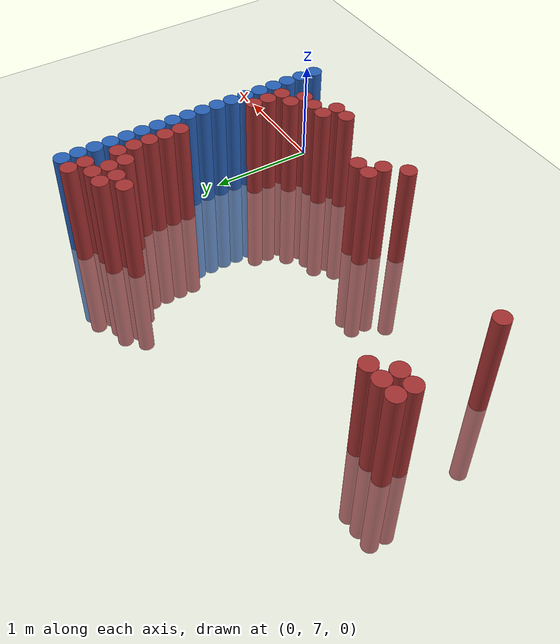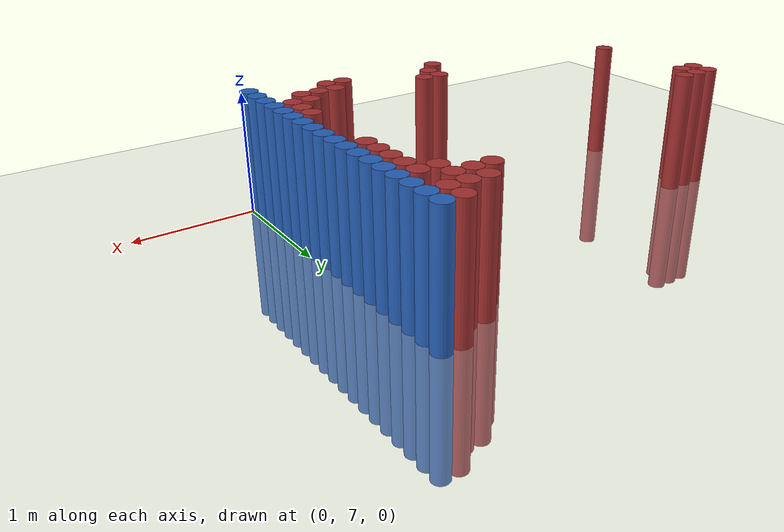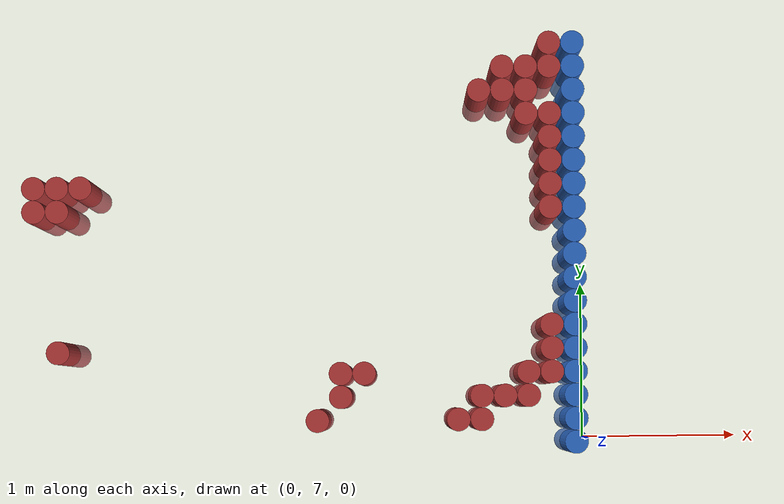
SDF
<sdf version="1.6">
 <world name="default">
  <model name="ground_plane">
   <static>1</static>
   <link name="link">
    <collision name="collision">
     <geometry><plane><normal>0 0 1</normal><size>100 100</size></plane></geometry>
     <surface><friction><ode><mu>100</mu><mu2>50</mu2></ode></friction></surface>
    </collision>
    <visual name="visual">
     <cast_shadows>0</cast_shadows>
     <geometry><plane><normal>0 0 1</normal><size>100 100</size></plane></geometry>
     <material>
      <script><uri>file://media/materials/scripts/gazebo.material</uri><name>Gazebo/Grey</name></script>
     </material>
    </visual>
   </link>
  </model>
  <model name="unit_cylinder_147">
   <static>1</static>
   <pose>-3.525000 8.475000 0.000000 0.000000 0.000000 0.000000</pose>
   <link name="link">
    <inertial>
     <mass>1</mass>
     <inertia><ixx>0.145833</ixx><ixy>0</ixy><ixz>0</ixz><iyy>0.145833</iyy><iyz>0</iyz><izz>0.125</izz></inertia>
    </inertial>
    <collision name="collision">
     <geometry><cylinder><radius>0.075000</radius><length>2</length></cylinder></geometry>
    </collision>
    <visual name="visual">
     <geometry><cylinder><radius>0.075000</radius><length>2</length></cylinder></geometry>
     <material>
      <ambient>0.648000 0.192000 0.192000 1</ambient>
      <diffuse>0.648000 0.192000 0.192000 1</diffuse>
     </material>
     <material>
      <script><name>Gazebo/Grey</name><uri>file://media/materials/scripts/gazebo.material</uri></script>
     </material>
    </visual>
   </link>
  </model>
  <model name="unit_cylinder_148">
   <static>1</static>
   <pose>-3.525000 8.625000 0.000000 0.000000 0.000000 0.000000</pose>
   <link name="link">
    <inertial>
     <mass>1</mass>
     <inertia><ixx>0.145833</ixx><ixy>0</ixy><ixz>0</ixz><iyy>0.145833</iyy><iyz>0</iyz><izz>0.125</izz></inertia>
    </inertial>
    <collision name="collision">
     <geometry><cylinder><radius>0.075000</radius><length>2</length></cylinder></geometry>
    </collision>
    <visual name="visual">
     <geometry><cylinder><radius>0.075000</radius><length>2</length></cylinder></geometry>
     <material>
      <ambient>0.648000 0.192000 0.192000 1</ambient>
      <diffuse>0.648000 0.192000 0.192000 1</diffuse>
     </material>
     <material>
      <script><name>Gazebo/Grey</name><uri>file://media/materials/scripts/gazebo.material</uri></script>
     </material>
    </visual>
   </link>
  </model>
  <model name="unit_cylinder_156">
   <static>1</static>
   <pose>-3.375000 7.575000 0.000000 0.000000 0.000000 0.000000</pose>
   <link name="link">
    <inertial>
     <mass>1</mass>
     <inertia><ixx>0.145833</ixx><ixy>0</ixy><ixz>0</ixz><iyy>0.145833</iyy><iyz>0</iyz><izz>0.125</izz></inertia>
    </inertial>
    <collision name="collision">
     <geometry><cylinder><radius>0.075000</radius><length>2</length></cylinder></geometry>
    </collision>
    <visual name="visual">
     <geometry><cylinder><radius>0.075000</radius><length>2</length></cylinder></geometry>
     <material>
      <ambient>0.648000 0.192000 0.192000 1</ambient>
      <diffuse>0.648000 0.192000 0.192000 1</diffuse>
     </material>
     <material>
      <script><name>Gazebo/Grey</name><uri>file://media/materials/scripts/gazebo.material</uri></script>
     </material>
    </visual>
   </link>
  </model>
  <model name="unit_cylinder_157">
   <static>1</static>
   <pose>-3.375000 8.475000 0.000000 0.000000 0.000000 0.000000</pose>
   <link name="link">
    <inertial>
     <mass>1</mass>
     <inertia><ixx>0.145833</ixx><ixy>0</ixy><ixz>0</ixz><iyy>0.145833</iyy><iyz>0</iyz><izz>0.125</izz></inertia>
    </inertial>
    <collision name="collision">
     <geometry><cylinder><radius>0.075000</radius><length>2</length></cylinder></geometry>
    </collision>
    <visual name="visual">
     <geometry><cylinder><radius>0.075000</radius><length>2</length></cylinder></geometry>
     <material>
      <ambient>0.648000 0.192000 0.192000 1</ambient>
      <diffuse>0.648000 0.192000 0.192000 1</diffuse>
     </material>
     <material>
      <script><name>Gazebo/Grey</name><uri>file://media/materials/scripts/gazebo.material</uri></script>
     </material>
    </visual>
   </link>
  </model>
  <model name="unit_cylinder_158">
   <static>1</static>
   <pose>-3.375000 8.625000 0.000000 0.000000 0.000000 0.000000</pose>
   <link name="link">
    <inertial>
     <mass>1</mass>
     <inertia><ixx>0.145833</ixx><ixy>0</ixy><ixz>0</ixz><iyy>0.145833</iyy><iyz>0</iyz><izz>0.125</izz></inertia>
    </inertial>
    <collision name="collision">
     <geometry><cylinder><radius>0.075000</radius><length>2</length></cylinder></geometry>
    </collision>
    <visual name="visual">
     <geometry><cylinder><radius>0.075000</radius><length>2</length></cylinder></geometry>
     <material>
      <ambient>0.648000 0.192000 0.192000 1</ambient>
      <diffuse>0.648000 0.192000 0.192000 1</diffuse>
     </material>
     <material>
      <script><name>Gazebo/Grey</name><uri>file://media/materials/scripts/gazebo.material</uri></script>
     </material>
    </visual>
   </link>
  </model>
  <model name="unit_cylinder_165">
   <static>1</static>
   <pose>-3.225000 8.625000 0.000000 0.000000 0.000000 0.000000</pose>
   <link name="link">
    <inertial>
     <mass>1</mass>
     <inertia><ixx>0.145833</ixx><ixy>0</ixy><ixz>0</ixz><iyy>0.145833</iyy><iyz>0</iyz><izz>0.125</izz></inertia>
    </inertial>
    <collision name="collision">
     <geometry><cylinder><radius>0.075000</radius><length>2</length></cylinder></geometry>
    </collision>
    <visual name="visual">
     <geometry><cylinder><radius>0.075000</radius><length>2</length></cylinder></geometry>
     <material>
      <ambient>0.648000 0.192000 0.192000 1</ambient>
      <diffuse>0.648000 0.192000 0.192000 1</diffuse>
     </material>
     <material>
      <script><name>Gazebo/Grey</name><uri>file://media/materials/scripts/gazebo.material</uri></script>
     </material>
    </visual>
   </link>
  </model>
  <model name="unit_cylinder_176">
   <static>1</static>
   <pose>-1.725000 7.125000 0.000000 0.000000 0.000000 0.000000</pose>
   <link name="link">
    <inertial>
     <mass>1</mass>
     <inertia><ixx>0.145833</ixx><ixy>0</ixy><ixz>0</ixz><iyy>0.145833</iyy><iyz>0</iyz><izz>0.125</izz></inertia>
    </inertial>
    <collision name="collision">
     <geometry><cylinder><radius>0.075000</radius><length>2</length></cylinder></geometry>
    </collision>
    <visual name="visual">
     <geometry><cylinder><radius>0.075000</radius><length>2</length></cylinder></geometry>
     <material>
      <ambient>0.648000 0.192000 0.192000 1</ambient>
      <diffuse>0.648000 0.192000 0.192000 1</diffuse>
     </material>
     <material>
      <script><name>Gazebo/Grey</name><uri>file://media/materials/scripts/gazebo.material</uri></script>
     </material>
    </visual>
   </link>
  </model>
  <model name="unit_cylinder_177">
   <static>1</static>
   <pose>-1.575000 7.275000 0.000000 0.000000 0.000000 0.000000</pose>
   <link name="link">
    <inertial>
     <mass>1</mass>
     <inertia><ixx>0.145833</ixx><ixy>0</ixy><ixz>0</ixz><iyy>0.145833</iyy><iyz>0</iyz><izz>0.125</izz></inertia>
    </inertial>
    <collision name="collision">
     <geometry><cylinder><radius>0.075000</radius><length>2</length></cylinder></geometry>
    </collision>
    <visual name="visual">
     <geometry><cylinder><radius>0.075000</radius><length>2</length></cylinder></geometry>
     <material>
      <ambient>0.648000 0.192000 0.192000 1</ambient>
      <diffuse>0.648000 0.192000 0.192000 1</diffuse>
     </material>
     <material>
      <script><name>Gazebo/Grey</name><uri>file://media/materials/scripts/gazebo.material</uri></script>
     </material>
    </visual>
   </link>
  </model>
  <model name="unit_cylinder_178">
   <static>1</static>
   <pose>-1.575000 7.425000 0.000000 0.000000 0.000000 0.000000</pose>
   <link name="link">
    <inertial>
     <mass>1</mass>
     <inertia><ixx>0.145833</ixx><ixy>0</ixy><ixz>0</ixz><iyy>0.145833</iyy><iyz>0</iyz><izz>0.125</izz></inertia>
    </inertial>
    <collision name="collision">
     <geometry><cylinder><radius>0.075000</radius><length>2</length></cylinder></geometry>
    </collision>
    <visual name="visual">
     <geometry><cylinder><radius>0.075000</radius><length>2</length></cylinder></geometry>
     <material>
      <ambient>0.648000 0.192000 0.192000 1</ambient>
      <diffuse>0.648000 0.192000 0.192000 1</diffuse>
     </material>
     <material>
      <script><name>Gazebo/Grey</name><uri>file://media/materials/scripts/gazebo.material</uri></script>
     </material>
    </visual>
   </link>
  </model>
  <model name="unit_cylinder_179">
   <static>1</static>
   <pose>-1.425000 7.425000 0.000000 0.000000 0.000000 0.000000</pose>
   <link name="link">
    <inertial>
     <mass>1</mass>
     <inertia><ixx>0.145833</ixx><ixy>0</ixy><ixz>0</ixz><iyy>0.145833</iyy><iyz>0</iyz><izz>0.125</izz></inertia>
    </inertial>
    <collision name="collision">
     <geometry><cylinder><radius>0.075000</radius><length>2</length></cylinder></geometry>
    </collision>
    <visual name="visual">
     <geometry><cylinder><radius>0.075000</radius><length>2</length></cylinder></geometry>
     <material>
      <ambient>0.648000 0.192000 0.192000 1</ambient>
      <diffuse>0.648000 0.192000 0.192000 1</diffuse>
     </material>
     <material>
      <script><name>Gazebo/Grey</name><uri>file://media/materials/scripts/gazebo.material</uri></script>
     </material>
    </visual>
   </link>
  </model>
  <model name="unit_cylinder_184">
   <static>1</static>
   <pose>-0.825000 7.125000 0.000000 0.000000 0.000000 0.000000</pose>
   <link name="link">
    <inertial>
     <mass>1</mass>
     <inertia><ixx>0.145833</ixx><ixy>0</ixy><ixz>0</ixz><iyy>0.145833</iyy><iyz>0</iyz><izz>0.125</izz></inertia>
    </inertial>
    <collision name="collision">
     <geometry><cylinder><radius>0.075000</radius><length>2</length></cylinder></geometry>
    </collision>
    <visual name="visual">
     <geometry><cylinder><radius>0.075000</radius><length>2</length></cylinder></geometry>
     <material>
      <ambient>0.648000 0.192000 0.192000 1</ambient>
      <diffuse>0.648000 0.192000 0.192000 1</diffuse>
     </material>
     <material>
      <script><name>Gazebo/Grey</name><uri>file://media/materials/scripts/gazebo.material</uri></script>
     </material>
    </visual>
   </link>
  </model>
  <model name="unit_cylinder_186">
   <static>1</static>
   <pose>-0.675000 7.125000 0.000000 0.000000 0.000000 0.000000</pose>
   <link name="link">
    <inertial>
     <mass>1</mass>
     <inertia><ixx>0.145833</ixx><ixy>0</ixy><ixz>0</ixz><iyy>0.145833</iyy><iyz>0</iyz><izz>0.125</izz></inertia>
    </inertial>
    <collision name="collision">
     <geometry><cylinder><radius>0.075000</radius><length>2</length></cylinder></geometry>
    </collision>
    <visual name="visual">
     <geometry><cylinder><radius>0.075000</radius><length>2</length></cylinder></geometry>
     <material>
      <ambient>0.648000 0.192000 0.192000 1</ambient>
      <diffuse>0.648000 0.192000 0.192000 1</diffuse>
     </material>
     <material>
      <script><name>Gazebo/Grey</name><uri>file://media/materials/scripts/gazebo.material</uri></script>
     </material>
    </visual>
   </link>
  </model>
  <model name="unit_cylinder_187">
   <static>1</static>
   <pose>-0.675000 7.275000 0.000000 0.000000 0.000000 0.000000</pose>
   <link name="link">
    <inertial>
     <mass>1</mass>
     <inertia><ixx>0.145833</ixx><ixy>0</ixy><ixz>0</ixz><iyy>0.145833</iyy><iyz>0</iyz><izz>0.125</izz></inertia>
    </inertial>
    <collision name="collision">
     <geometry><cylinder><radius>0.075000</radius><length>2</length></cylinder></geometry>
    </collision>
    <visual name="visual">
     <geometry><cylinder><radius>0.075000</radius><length>2</length></cylinder></geometry>
     <material>
      <ambient>0.648000 0.192000 0.192000 1</ambient>
      <diffuse>0.648000 0.192000 0.192000 1</diffuse>
     </material>
     <material>
      <script><name>Gazebo/Grey</name><uri>file://media/materials/scripts/gazebo.material</uri></script>
     </material>
    </visual>
   </link>
  </model>
  <model name="unit_cylinder_188">
   <static>1</static>
   <pose>-0.675000 9.225000 0.000000 0.000000 0.000000 0.000000</pose>
   <link name="link">
    <inertial>
     <mass>1</mass>
     <inertia><ixx>0.145833</ixx><ixy>0</ixy><ixz>0</ixz><iyy>0.145833</iyy><iyz>0</iyz><izz>0.125</izz></inertia>
    </inertial>
    <collision name="collision">
     <geometry><cylinder><radius>0.075000</radius><length>2</length></cylinder></geometry>
    </collision>
    <visual name="visual">
     <geometry><cylinder><radius>0.075000</radius><length>2</length></cylinder></geometry>
     <material>
      <ambient>0.648000 0.192000 0.192000 1</ambient>
      <diffuse>0.648000 0.192000 0.192000 1</diffuse>
     </material>
     <material>
      <script><name>Gazebo/Grey</name><uri>file://media/materials/scripts/gazebo.material</uri></script>
     </material>
    </visual>
   </link>
  </model>
  <model name="unit_cylinder_192">
   <static>1</static>
   <pose>-0.525000 7.275000 0.000000 0.000000 0.000000 0.000000</pose>
   <link name="link">
    <inertial>
     <mass>1</mass>
     <inertia><ixx>0.145833</ixx><ixy>0</ixy><ixz>0</ixz><iyy>0.145833</iyy><iyz>0</iyz><izz>0.125</izz></inertia>
    </inertial>
    <collision name="collision">
     <geometry><cylinder><radius>0.075000</radius><length>2</length></cylinder></geometry>
    </collision>
    <visual name="visual">
     <geometry><cylinder><radius>0.075000</radius><length>2</length></cylinder></geometry>
     <material>
      <ambient>0.648000 0.192000 0.192000 1</ambient>
      <diffuse>0.648000 0.192000 0.192000 1</diffuse>
     </material>
     <material>
      <script><name>Gazebo/Grey</name><uri>file://media/materials/scripts/gazebo.material</uri></script>
     </material>
    </visual>
   </link>
  </model>
  <model name="unit_cylinder_193">
   <static>1</static>
   <pose>-0.525000 9.225000 0.000000 0.000000 0.000000 0.000000</pose>
   <link name="link">
    <inertial>
     <mass>1</mass>
     <inertia><ixx>0.145833</ixx><ixy>0</ixy><ixz>0</ixz><iyy>0.145833</iyy><iyz>0</iyz><izz>0.125</izz></inertia>
    </inertial>
    <collision name="collision">
     <geometry><cylinder><radius>0.075000</radius><length>2</length></cylinder></geometry>
    </collision>
    <visual name="visual">
     <geometry><cylinder><radius>0.075000</radius><length>2</length></cylinder></geometry>
     <material>
      <ambient>0.648000 0.192000 0.192000 1</ambient>
      <diffuse>0.648000 0.192000 0.192000 1</diffuse>
     </material>
     <material>
      <script><name>Gazebo/Grey</name><uri>file://media/materials/scripts/gazebo.material</uri></script>
     </material>
    </visual>
   </link>
  </model>
  <model name="unit_cylinder_194">
   <static>1</static>
   <pose>-0.525000 9.375000 0.000000 0.000000 0.000000 0.000000</pose>
   <link name="link">
    <inertial>
     <mass>1</mass>
     <inertia><ixx>0.145833</ixx><ixy>0</ixy><ixz>0</ixz><iyy>0.145833</iyy><iyz>0</iyz><izz>0.125</izz></inertia>
    </inertial>
    <collision name="collision">
     <geometry><cylinder><radius>0.075000</radius><length>2</length></cylinder></geometry>
    </collision>
    <visual name="visual">
     <geometry><cylinder><radius>0.075000</radius><length>2</length></cylinder></geometry>
     <material>
      <ambient>0.648000 0.192000 0.192000 1</ambient>
      <diffuse>0.648000 0.192000 0.192000 1</diffuse>
     </material>
     <material>
      <script><name>Gazebo/Grey</name><uri>file://media/materials/scripts/gazebo.material</uri></script>
     </material>
    </visual>
   </link>
  </model>
  <model name="unit_cylinder_197">
   <static>1</static>
   <pose>-0.375000 7.275000 0.000000 0.000000 0.000000 0.000000</pose>
   <link name="link">
    <inertial>
     <mass>1</mass>
     <inertia><ixx>0.145833</ixx><ixy>0</ixy><ixz>0</ixz><iyy>0.145833</iyy><iyz>0</iyz><izz>0.125</izz></inertia>
    </inertial>
    <collision name="collision">
     <geometry><cylinder><radius>0.075000</radius><length>2</length></cylinder></geometry>
    </collision>
    <visual name="visual">
     <geometry><cylinder><radius>0.075000</radius><length>2</length></cylinder></geometry>
     <material>
      <ambient>0.648000 0.192000 0.192000 1</ambient>
      <diffuse>0.648000 0.192000 0.192000 1</diffuse>
     </material>
     <material>
      <script><name>Gazebo/Grey</name><uri>file://media/materials/scripts/gazebo.material</uri></script>
     </material>
    </visual>
   </link>
  </model>
  <model name="unit_cylinder_198">
   <static>1</static>
   <pose>-0.375000 7.425000 0.000000 0.000000 0.000000 0.000000</pose>
   <link name="link">
    <inertial>
     <mass>1</mass>
     <inertia><ixx>0.145833</ixx><ixy>0</ixy><ixz>0</ixz><iyy>0.145833</iyy><iyz>0</iyz><izz>0.125</izz></inertia>
    </inertial>
    <collision name="collision">
     <geometry><cylinder><radius>0.075000</radius><length>2</length></cylinder></geometry>
    </collision>
    <visual name="visual">
     <geometry><cylinder><radius>0.075000</radius><length>2</length></cylinder></geometry>
     <material>
      <ambient>0.648000 0.192000 0.192000 1</ambient>
      <diffuse>0.648000 0.192000 0.192000 1</diffuse>
     </material>
     <material>
      <script><name>Gazebo/Grey</name><uri>file://media/materials/scripts/gazebo.material</uri></script>
     </material>
    </visual>
   </link>
  </model>
  <model name="unit_cylinder_199">
   <static>1</static>
   <pose>-0.375000 9.075000 0.000000 0.000000 0.000000 0.000000</pose>
   <link name="link">
    <inertial>
     <mass>1</mass>
     <inertia><ixx>0.145833</ixx><ixy>0</ixy><ixz>0</ixz><iyy>0.145833</iyy><iyz>0</iyz><izz>0.125</izz></inertia>
    </inertial>
    <collision name="collision">
     <geometry><cylinder><radius>0.075000</radius><length>2</length></cylinder></geometry>
    </collision>
    <visual name="visual">
     <geometry><cylinder><radius>0.075000</radius><length>2</length></cylinder></geometry>
     <material>
      <ambient>0.648000 0.192000 0.192000 1</ambient>
      <diffuse>0.648000 0.192000 0.192000 1</diffuse>
     </material>
     <material>
      <script><name>Gazebo/Grey</name><uri>file://media/materials/scripts/gazebo.material</uri></script>
     </material>
    </visual>
   </link>
  </model>
  <model name="unit_cylinder_200">
   <static>1</static>
   <pose>-0.375000 9.225000 0.000000 0.000000 0.000000 0.000000</pose>
   <link name="link">
    <inertial>
     <mass>1</mass>
     <inertia><ixx>0.145833</ixx><ixy>0</ixy><ixz>0</ixz><iyy>0.145833</iyy><iyz>0</iyz><izz>0.125</izz></inertia>
    </inertial>
    <collision name="collision">
     <geometry><cylinder><radius>0.075000</radius><length>2</length></cylinder></geometry>
    </collision>
    <visual name="visual">
     <geometry><cylinder><radius>0.075000</radius><length>2</length></cylinder></geometry>
     <material>
      <ambient>0.648000 0.192000 0.192000 1</ambient>
      <diffuse>0.648000 0.192000 0.192000 1</diffuse>
     </material>
     <material>
      <script><name>Gazebo/Grey</name><uri>file://media/materials/scripts/gazebo.material</uri></script>
     </material>
    </visual>
   </link>
  </model>
  <model name="unit_cylinder_201">
   <static>1</static>
   <pose>-0.375000 9.375000 0.000000 0.000000 0.000000 0.000000</pose>
   <link name="link">
    <inertial>
     <mass>1</mass>
     <inertia><ixx>0.145833</ixx><ixy>0</ixy><ixz>0</ixz><iyy>0.145833</iyy><iyz>0</iyz><izz>0.125</izz></inertia>
    </inertial>
    <collision name="collision">
     <geometry><cylinder><radius>0.075000</radius><length>2</length></cylinder></geometry>
    </collision>
    <visual name="visual">
     <geometry><cylinder><radius>0.075000</radius><length>2</length></cylinder></geometry>
     <material>
      <ambient>0.648000 0.192000 0.192000 1</ambient>
      <diffuse>0.648000 0.192000 0.192000 1</diffuse>
     </material>
     <material>
      <script><name>Gazebo/Grey</name><uri>file://media/materials/scripts/gazebo.material</uri></script>
     </material>
    </visual>
   </link>
  </model>
  <model name="unit_cylinder_210">
   <static>1</static>
   <pose>-0.225000 7.425000 0.000000 0.000000 0.000000 0.000000</pose>
   <link name="link">
    <inertial>
     <mass>1</mass>
     <inertia><ixx>0.145833</ixx><ixy>0</ixy><ixz>0</ixz><iyy>0.145833</iyy><iyz>0</iyz><izz>0.125</izz></inertia>
    </inertial>
    <collision name="collision">
     <geometry><cylinder><radius>0.075000</radius><length>2</length></cylinder></geometry>
    </collision>
    <visual name="visual">
     <geometry><cylinder><radius>0.075000</radius><length>2</length></cylinder></geometry>
     <material>
      <ambient>0.648000 0.192000 0.192000 1</ambient>
      <diffuse>0.648000 0.192000 0.192000 1</diffuse>
     </material>
     <material>
      <script><name>Gazebo/Grey</name><uri>file://media/materials/scripts/gazebo.material</uri></script>
     </material>
    </visual>
   </link>
  </model>
  <model name="unit_cylinder_211">
   <static>1</static>
   <pose>-0.225000 7.575000 0.000000 0.000000 0.000000 0.000000</pose>
   <link name="link">
    <inertial>
     <mass>1</mass>
     <inertia><ixx>0.145833</ixx><ixy>0</ixy><ixz>0</ixz><iyy>0.145833</iyy><iyz>0</iyz><izz>0.125</izz></inertia>
    </inertial>
    <collision name="collision">
     <geometry><cylinder><radius>0.075000</radius><length>2</length></cylinder></geometry>
    </collision>
    <visual name="visual">
     <geometry><cylinder><radius>0.075000</radius><length>2</length></cylinder></geometry>
     <material>
      <ambient>0.648000 0.192000 0.192000 1</ambient>
      <diffuse>0.648000 0.192000 0.192000 1</diffuse>
     </material>
     <material>
      <script><name>Gazebo/Grey</name><uri>file://media/materials/scripts/gazebo.material</uri></script>
     </material>
    </visual>
   </link>
  </model>
  <model name="unit_cylinder_212">
   <static>1</static>
   <pose>-0.225000 7.725000 0.000000 0.000000 0.000000 0.000000</pose>
   <link name="link">
    <inertial>
     <mass>1</mass>
     <inertia><ixx>0.145833</ixx><ixy>0</ixy><ixz>0</ixz><iyy>0.145833</iyy><iyz>0</iyz><izz>0.125</izz></inertia>
    </inertial>
    <collision name="collision">
     <geometry><cylinder><radius>0.075000</radius><length>2</length></cylinder></geometry>
    </collision>
    <visual name="visual">
     <geometry><cylinder><radius>0.075000</radius><length>2</length></cylinder></geometry>
     <material>
      <ambient>0.648000 0.192000 0.192000 1</ambient>
      <diffuse>0.648000 0.192000 0.192000 1</diffuse>
     </material>
     <material>
      <script><name>Gazebo/Grey</name><uri>file://media/materials/scripts/gazebo.material</uri></script>
     </material>
    </visual>
   </link>
  </model>
  <model name="unit_cylinder_213">
   <static>1</static>
   <pose>-0.225000 8.475000 0.000000 0.000000 0.000000 0.000000</pose>
   <link name="link">
    <inertial>
     <mass>1</mass>
     <inertia><ixx>0.145833</ixx><ixy>0</ixy><ixz>0</ixz><iyy>0.145833</iyy><iyz>0</iyz><izz>0.125</izz></inertia>
    </inertial>
    <collision name="collision">
     <geometry><cylinder><radius>0.075000</radius><length>2</length></cylinder></geometry>
    </collision>
    <visual name="visual">
     <geometry><cylinder><radius>0.075000</radius><length>2</length></cylinder></geometry>
     <material>
      <ambient>0.648000 0.192000 0.192000 1</ambient>
      <diffuse>0.648000 0.192000 0.192000 1</diffuse>
     </material>
     <material>
      <script><name>Gazebo/Grey</name><uri>file://media/materials/scripts/gazebo.material</uri></script>
     </material>
    </visual>
   </link>
  </model>
  <model name="unit_cylinder_214">
   <static>1</static>
   <pose>-0.225000 8.625000 0.000000 0.000000 0.000000 0.000000</pose>
   <link name="link">
    <inertial>
     <mass>1</mass>
     <inertia><ixx>0.145833</ixx><ixy>0</ixy><ixz>0</ixz><iyy>0.145833</iyy><iyz>0</iyz><izz>0.125</izz></inertia>
    </inertial>
    <collision name="collision">
     <geometry><cylinder><radius>0.075000</radius><length>2</length></cylinder></geometry>
    </collision>
    <visual name="visual">
     <geometry><cylinder><radius>0.075000</radius><length>2</length></cylinder></geometry>
     <material>
      <ambient>0.648000 0.192000 0.192000 1</ambient>
      <diffuse>0.648000 0.192000 0.192000 1</diffuse>
     </material>
     <material>
      <script><name>Gazebo/Grey</name><uri>file://media/materials/scripts/gazebo.material</uri></script>
     </material>
    </visual>
   </link>
  </model>
  <model name="unit_cylinder_215">
   <static>1</static>
   <pose>-0.225000 8.775000 0.000000 0.000000 0.000000 0.000000</pose>
   <link name="link">
    <inertial>
     <mass>1</mass>
     <inertia><ixx>0.145833</ixx><ixy>0</ixy><ixz>0</ixz><iyy>0.145833</iyy><iyz>0</iyz><izz>0.125</izz></inertia>
    </inertial>
    <collision name="collision">
     <geometry><cylinder><radius>0.075000</radius><length>2</length></cylinder></geometry>
    </collision>
    <visual name="visual">
     <geometry><cylinder><radius>0.075000</radius><length>2</length></cylinder></geometry>
     <material>
      <ambient>0.648000 0.192000 0.192000 1</ambient>
      <diffuse>0.648000 0.192000 0.192000 1</diffuse>
     </material>
     <material>
      <script><name>Gazebo/Grey</name><uri>file://media/materials/scripts/gazebo.material</uri></script>
     </material>
    </visual>
   </link>
  </model>
  <model name="unit_cylinder_216">
   <static>1</static>
   <pose>-0.225000 8.925000 0.000000 0.000000 0.000000 0.000000</pose>
   <link name="link">
    <inertial>
     <mass>1</mass>
     <inertia><ixx>0.145833</ixx><ixy>0</ixy><ixz>0</ixz><iyy>0.145833</iyy><iyz>0</iyz><izz>0.125</izz></inertia>
    </inertial>
    <collision name="collision">
     <geometry><cylinder><radius>0.075000</radius><length>2</length></cylinder></geometry>
    </collision>
    <visual name="visual">
     <geometry><cylinder><radius>0.075000</radius><length>2</length></cylinder></geometry>
     <material>
      <ambient>0.648000 0.192000 0.192000 1</ambient>
      <diffuse>0.648000 0.192000 0.192000 1</diffuse>
     </material>
     <material>
      <script><name>Gazebo/Grey</name><uri>file://media/materials/scripts/gazebo.material</uri></script>
     </material>
    </visual>
   </link>
  </model>
  <model name="unit_cylinder_217">
   <static>1</static>
   <pose>-0.225000 9.075000 0.000000 0.000000 0.000000 0.000000</pose>
   <link name="link">
    <inertial>
     <mass>1</mass>
     <inertia><ixx>0.145833</ixx><ixy>0</ixy><ixz>0</ixz><iyy>0.145833</iyy><iyz>0</iyz><izz>0.125</izz></inertia>
    </inertial>
    <collision name="collision">
     <geometry><cylinder><radius>0.075000</radius><length>2</length></cylinder></geometry>
    </collision>
    <visual name="visual">
     <geometry><cylinder><radius>0.075000</radius><length>2</length></cylinder></geometry>
     <material>
      <ambient>0.648000 0.192000 0.192000 1</ambient>
      <diffuse>0.648000 0.192000 0.192000 1</diffuse>
     </material>
     <material>
      <script><name>Gazebo/Grey</name><uri>file://media/materials/scripts/gazebo.material</uri></script>
     </material>
    </visual>
   </link>
  </model>
  <model name="unit_cylinder_218">
   <static>1</static>
   <pose>-0.225000 9.375000 0.000000 0.000000 0.000000 0.000000</pose>
   <link name="link">
    <inertial>
     <mass>1</mass>
     <inertia><ixx>0.145833</ixx><ixy>0</ixy><ixz>0</ixz><iyy>0.145833</iyy><iyz>0</iyz><izz>0.125</izz></inertia>
    </inertial>
    <collision name="collision">
     <geometry><cylinder><radius>0.075000</radius><length>2</length></cylinder></geometry>
    </collision>
    <visual name="visual">
     <geometry><cylinder><radius>0.075000</radius><length>2</length></cylinder></geometry>
     <material>
      <ambient>0.648000 0.192000 0.192000 1</ambient>
      <diffuse>0.648000 0.192000 0.192000 1</diffuse>
     </material>
     <material>
      <script><name>Gazebo/Grey</name><uri>file://media/materials/scripts/gazebo.material</uri></script>
     </material>
    </visual>
   </link>
  </model>
  <model name="unit_cylinder_219">
   <static>1</static>
   <pose>-0.225000 9.525000 0.000000 0.000000 0.000000 0.000000</pose>
   <link name="link">
    <inertial>
     <mass>1</mass>
     <inertia><ixx>0.145833</ixx><ixy>0</ixy><ixz>0</ixz><iyy>0.145833</iyy><iyz>0</iyz><izz>0.125</izz></inertia>
    </inertial>
    <collision name="collision">
     <geometry><cylinder><radius>0.075000</radius><length>2</length></cylinder></geometry>
    </collision>
    <visual name="visual">
     <geometry><cylinder><radius>0.075000</radius><length>2</length></cylinder></geometry>
     <material>
      <ambient>0.648000 0.192000 0.192000 1</ambient>
      <diffuse>0.648000 0.192000 0.192000 1</diffuse>
     </material>
     <material>
      <script><name>Gazebo/Grey</name><uri>file://media/materials/scripts/gazebo.material</uri></script>
     </material>
    </visual>
   </link>
  </model>
  <model name="unit_cylinder_232">
   <static>1</static>
   <pose>-0.075000 6.975000 0.000000 0.000000 0.000000 0.000000</pose>
   <link name="link">
    <inertial>
     <mass>1</mass>
     <inertia><ixx>0.145833</ixx><ixy>0</ixy><ixz>0</ixz><iyy>0.145833</iyy><iyz>0</iyz><izz>0.125</izz></inertia>
    </inertial>
    <collision name="collision">
     <geometry><cylinder><radius>0.075000</radius><length>2</length></cylinder></geometry>
    </collision>
    <visual name="visual">
     <geometry><cylinder><radius>0.075000</radius><length>2</length></cylinder></geometry>
     <material>
      <ambient>0.152000 0.379000 0.720000 1</ambient>
      <diffuse>0.152000 0.379000 0.720000 1</diffuse>
     </material>
     <material>
      <script><name>Gazebo/Grey</name><uri>file://media/materials/scripts/gazebo.material</uri></script>
     </material>
    </visual>
   </link>
  </model>
  <model name="unit_cylinder_233">
   <static>1</static>
   <pose>-0.075000 7.125000 0.000000 0.000000 0.000000 0.000000</pose>
   <link name="link">
    <inertial>
     <mass>1</mass>
     <inertia><ixx>0.145833</ixx><ixy>0</ixy><ixz>0</ixz><iyy>0.145833</iyy><iyz>0</iyz><izz>0.125</izz></inertia>
    </inertial>
    <collision name="collision">
     <geometry><cylinder><radius>0.075000</radius><length>2</length></cylinder></geometry>
    </collision>
    <visual name="visual">
     <geometry><cylinder><radius>0.075000</radius><length>2</length></cylinder></geometry>
     <material>
      <ambient>0.152000 0.379000 0.720000 1</ambient>
      <diffuse>0.152000 0.379000 0.720000 1</diffuse>
     </material>
     <material>
      <script><name>Gazebo/Grey</name><uri>file://media/materials/scripts/gazebo.material</uri></script>
     </material>
    </visual>
   </link>
  </model>
  <model name="unit_cylinder_234">
   <static>1</static>
   <pose>-0.075000 7.275000 0.000000 0.000000 0.000000 0.000000</pose>
   <link name="link">
    <inertial>
     <mass>1</mass>
     <inertia><ixx>0.145833</ixx><ixy>0</ixy><ixz>0</ixz><iyy>0.145833</iyy><iyz>0</iyz><izz>0.125</izz></inertia>
    </inertial>
    <collision name="collision">
     <geometry><cylinder><radius>0.075000</radius><length>2</length></cylinder></geometry>
    </collision>
    <visual name="visual">
     <geometry><cylinder><radius>0.075000</radius><length>2</length></cylinder></geometry>
     <material>
      <ambient>0.152000 0.379000 0.720000 1</ambient>
      <diffuse>0.152000 0.379000 0.720000 1</diffuse>
     </material>
     <material>
      <script><name>Gazebo/Grey</name><uri>file://media/materials/scripts/gazebo.material</uri></script>
     </material>
    </visual>
   </link>
  </model>
  <model name="unit_cylinder_235">
   <static>1</static>
   <pose>-0.075000 7.425000 0.000000 0.000000 0.000000 0.000000</pose>
   <link name="link">
    <inertial>
     <mass>1</mass>
     <inertia><ixx>0.145833</ixx><ixy>0</ixy><ixz>0</ixz><iyy>0.145833</iyy><iyz>0</iyz><izz>0.125</izz></inertia>
    </inertial>
    <collision name="collision">
     <geometry><cylinder><radius>0.075000</radius><length>2</length></cylinder></geometry>
    </collision>
    <visual name="visual">
     <geometry><cylinder><radius>0.075000</radius><length>2</length></cylinder></geometry>
     <material>
      <ambient>0.152000 0.379000 0.720000 1</ambient>
      <diffuse>0.152000 0.379000 0.720000 1</diffuse>
     </material>
     <material>
      <script><name>Gazebo/Grey</name><uri>file://media/materials/scripts/gazebo.material</uri></script>
     </material>
    </visual>
   </link>
  </model>
  <model name="unit_cylinder_236">
   <static>1</static>
   <pose>-0.075000 7.575000 0.000000 0.000000 0.000000 0.000000</pose>
   <link name="link">
    <inertial>
     <mass>1</mass>
     <inertia><ixx>0.145833</ixx><ixy>0</ixy><ixz>0</ixz><iyy>0.145833</iyy><iyz>0</iyz><izz>0.125</izz></inertia>
    </inertial>
    <collision name="collision">
     <geometry><cylinder><radius>0.075000</radius><length>2</length></cylinder></geometry>
    </collision>
    <visual name="visual">
     <geometry><cylinder><radius>0.075000</radius><length>2</length></cylinder></geometry>
     <material>
      <ambient>0.152000 0.379000 0.720000 1</ambient>
      <diffuse>0.152000 0.379000 0.720000 1</diffuse>
     </material>
     <material>
      <script><name>Gazebo/Grey</name><uri>file://media/materials/scripts/gazebo.material</uri></script>
     </material>
    </visual>
   </link>
  </model>
  <model name="unit_cylinder_237">
   <static>1</static>
   <pose>-0.075000 7.725000 0.000000 0.000000 0.000000 0.000000</pose>
   <link name="link">
    <inertial>
     <mass>1</mass>
     <inertia><ixx>0.145833</ixx><ixy>0</ixy><ixz>0</ixz><iyy>0.145833</iyy><iyz>0</iyz><izz>0.125</izz></inertia>
    </inertial>
    <collision name="collision">
     <geometry><cylinder><radius>0.075000</radius><length>2</length></cylinder></geometry>
    </collision>
    <visual name="visual">
     <geometry><cylinder><radius>0.075000</radius><length>2</length></cylinder></geometry>
     <material>
      <ambient>0.152000 0.379000 0.720000 1</ambient>
      <diffuse>0.152000 0.379000 0.720000 1</diffuse>
     </material>
     <material>
      <script><name>Gazebo/Grey</name><uri>file://media/materials/scripts/gazebo.material</uri></script>
     </material>
    </visual>
   </link>
  </model>
  <model name="unit_cylinder_238">
   <static>1</static>
   <pose>-0.075000 7.875000 0.000000 0.000000 0.000000 0.000000</pose>
   <link name="link">
    <inertial>
     <mass>1</mass>
     <inertia><ixx>0.145833</ixx><ixy>0</ixy><ixz>0</ixz><iyy>0.145833</iyy><iyz>0</iyz><izz>0.125</izz></inertia>
    </inertial>
    <collision name="collision">
     <geometry><cylinder><radius>0.075000</radius><length>2</length></cylinder></geometry>
    </collision>
    <visual name="visual">
     <geometry><cylinder><radius>0.075000</radius><length>2</length></cylinder></geometry>
     <material>
      <ambient>0.152000 0.379000 0.720000 1</ambient>
      <diffuse>0.152000 0.379000 0.720000 1</diffuse>
     </material>
     <material>
      <script><name>Gazebo/Grey</name><uri>file://media/materials/scripts/gazebo.material</uri></script>
     </material>
    </visual>
   </link>
  </model>
  <model name="unit_cylinder_239">
   <static>1</static>
   <pose>-0.075000 8.025000 0.000000 0.000000 0.000000 0.000000</pose>
   <link name="link">
    <inertial>
     <mass>1</mass>
     <inertia><ixx>0.145833</ixx><ixy>0</ixy><ixz>0</ixz><iyy>0.145833</iyy><iyz>0</iyz><izz>0.125</izz></inertia>
    </inertial>
    <collision name="collision">
     <geometry><cylinder><radius>0.075000</radius><length>2</length></cylinder></geometry>
    </collision>
    <visual name="visual">
     <geometry><cylinder><radius>0.075000</radius><length>2</length></cylinder></geometry>
     <material>
      <ambient>0.152000 0.379000 0.720000 1</ambient>
      <diffuse>0.152000 0.379000 0.720000 1</diffuse>
     </material>
     <material>
      <script><name>Gazebo/Grey</name><uri>file://media/materials/scripts/gazebo.material</uri></script>
     </material>
    </visual>
   </link>
  </model>
  <model name="unit_cylinder_240">
   <static>1</static>
   <pose>-0.075000 8.175000 0.000000 0.000000 0.000000 0.000000</pose>
   <link name="link">
    <inertial>
     <mass>1</mass>
     <inertia><ixx>0.145833</ixx><ixy>0</ixy><ixz>0</ixz><iyy>0.145833</iyy><iyz>0</iyz><izz>0.125</izz></inertia>
    </inertial>
    <collision name="collision">
     <geometry><cylinder><radius>0.075000</radius><length>2</length></cylinder></geometry>
    </collision>
    <visual name="visual">
     <geometry><cylinder><radius>0.075000</radius><length>2</length></cylinder></geometry>
     <material>
      <ambient>0.152000 0.379000 0.720000 1</ambient>
      <diffuse>0.152000 0.379000 0.720000 1</diffuse>
     </material>
     <material>
      <script><name>Gazebo/Grey</name><uri>file://media/materials/scripts/gazebo.material</uri></script>
     </material>
    </visual>
   </link>
  </model>
  <model name="unit_cylinder_241">
   <static>1</static>
   <pose>-0.075000 8.325000 0.000000 0.000000 0.000000 0.000000</pose>
   <link name="link">
    <inertial>
     <mass>1</mass>
     <inertia><ixx>0.145833</ixx><ixy>0</ixy><ixz>0</ixz><iyy>0.145833</iyy><iyz>0</iyz><izz>0.125</izz></inertia>
    </inertial>
    <collision name="collision">
     <geometry><cylinder><radius>0.075000</radius><length>2</length></cylinder></geometry>
    </collision>
    <visual name="visual">
     <geometry><cylinder><radius>0.075000</radius><length>2</length></cylinder></geometry>
     <material>
      <ambient>0.152000 0.379000 0.720000 1</ambient>
      <diffuse>0.152000 0.379000 0.720000 1</diffuse>
     </material>
     <material>
      <script><name>Gazebo/Grey</name><uri>file://media/materials/scripts/gazebo.material</uri></script>
     </material>
    </visual>
   </link>
  </model>
  <model name="unit_cylinder_242">
   <static>1</static>
   <pose>-0.075000 8.475000 0.000000 0.000000 0.000000 0.000000</pose>
   <link name="link">
    <inertial>
     <mass>1</mass>
     <inertia><ixx>0.145833</ixx><ixy>0</ixy><ixz>0</ixz><iyy>0.145833</iyy><iyz>0</iyz><izz>0.125</izz></inertia>
    </inertial>
    <collision name="collision">
     <geometry><cylinder><radius>0.075000</radius><length>2</length></cylinder></geometry>
    </collision>
    <visual name="visual">
     <geometry><cylinder><radius>0.075000</radius><length>2</length></cylinder></geometry>
     <material>
      <ambient>0.152000 0.379000 0.720000 1</ambient>
      <diffuse>0.152000 0.379000 0.720000 1</diffuse>
     </material>
     <material>
      <script><name>Gazebo/Grey</name><uri>file://media/materials/scripts/gazebo.material</uri></script>
     </material>
    </visual>
   </link>
  </model>
  <model name="unit_cylinder_243">
   <static>1</static>
   <pose>-0.075000 8.625000 0.000000 0.000000 0.000000 0.000000</pose>
   <link name="link">
    <inertial>
     <mass>1</mass>
     <inertia><ixx>0.145833</ixx><ixy>0</ixy><ixz>0</ixz><iyy>0.145833</iyy><iyz>0</iyz><izz>0.125</izz></inertia>
    </inertial>
    <collision name="collision">
     <geometry><cylinder><radius>0.075000</radius><length>2</length></cylinder></geometry>
    </collision>
    <visual name="visual">
     <geometry><cylinder><radius>0.075000</radius><length>2</length></cylinder></geometry>
     <material>
      <ambient>0.152000 0.379000 0.720000 1</ambient>
      <diffuse>0.152000 0.379000 0.720000 1</diffuse>
     </material>
     <material>
      <script><name>Gazebo/Grey</name><uri>file://media/materials/scripts/gazebo.material</uri></script>
     </material>
    </visual>
   </link>
  </model>
  <model name="unit_cylinder_244">
   <static>1</static>
   <pose>-0.075000 8.775000 0.000000 0.000000 0.000000 0.000000</pose>
   <link name="link">
    <inertial>
     <mass>1</mass>
     <inertia><ixx>0.145833</ixx><ixy>0</ixy><ixz>0</ixz><iyy>0.145833</iyy><iyz>0</iyz><izz>0.125</izz></inertia>
    </inertial>
    <collision name="collision">
     <geometry><cylinder><radius>0.075000</radius><length>2</length></cylinder></geometry>
    </collision>
    <visual name="visual">
     <geometry><cylinder><radius>0.075000</radius><length>2</length></cylinder></geometry>
     <material>
      <ambient>0.152000 0.379000 0.720000 1</ambient>
      <diffuse>0.152000 0.379000 0.720000 1</diffuse>
     </material>
     <material>
      <script><name>Gazebo/Grey</name><uri>file://media/materials/scripts/gazebo.material</uri></script>
     </material>
    </visual>
   </link>
  </model>
  <model name="unit_cylinder_245">
   <static>1</static>
   <pose>-0.075000 8.925000 0.000000 0.000000 0.000000 0.000000</pose>
   <link name="link">
    <inertial>
     <mass>1</mass>
     <inertia><ixx>0.145833</ixx><ixy>0</ixy><ixz>0</ixz><iyy>0.145833</iyy><iyz>0</iyz><izz>0.125</izz></inertia>
    </inertial>
    <collision name="collision">
     <geometry><cylinder><radius>0.075000</radius><length>2</length></cylinder></geometry>
    </collision>
    <visual name="visual">
     <geometry><cylinder><radius>0.075000</radius><length>2</length></cylinder></geometry>
     <material>
      <ambient>0.152000 0.379000 0.720000 1</ambient>
      <diffuse>0.152000 0.379000 0.720000 1</diffuse>
     </material>
     <material>
      <script><name>Gazebo/Grey</name><uri>file://media/materials/scripts/gazebo.material</uri></script>
     </material>
    </visual>
   </link>
  </model>
  <model name="unit_cylinder_246">
   <static>1</static>
   <pose>-0.075000 9.075000 0.000000 0.000000 0.000000 0.000000</pose>
   <link name="link">
    <inertial>
     <mass>1</mass>
     <inertia><ixx>0.145833</ixx><ixy>0</ixy><ixz>0</ixz><iyy>0.145833</iyy><iyz>0</iyz><izz>0.125</izz></inertia>
    </inertial>
    <collision name="collision">
     <geometry><cylinder><radius>0.075000</radius><length>2</length></cylinder></geometry>
    </collision>
    <visual name="visual">
     <geometry><cylinder><radius>0.075000</radius><length>2</length></cylinder></geometry>
     <material>
      <ambient>0.152000 0.379000 0.720000 1</ambient>
      <diffuse>0.152000 0.379000 0.720000 1</diffuse>
     </material>
     <material>
      <script><name>Gazebo/Grey</name><uri>file://media/materials/scripts/gazebo.material</uri></script>
     </material>
    </visual>
   </link>
  </model>
  <model name="unit_cylinder_247">
   <static>1</static>
   <pose>-0.075000 9.225000 0.000000 0.000000 0.000000 0.000000</pose>
   <link name="link">
    <inertial>
     <mass>1</mass>
     <inertia><ixx>0.145833</ixx><ixy>0</ixy><ixz>0</ixz><iyy>0.145833</iyy><iyz>0</iyz><izz>0.125</izz></inertia>
    </inertial>
    <collision name="collision">
     <geometry><cylinder><radius>0.075000</radius><length>2</length></cylinder></geometry>
    </collision>
    <visual name="visual">
     <geometry><cylinder><radius>0.075000</radius><length>2</length></cylinder></geometry>
     <material>
      <ambient>0.152000 0.379000 0.720000 1</ambient>
      <diffuse>0.152000 0.379000 0.720000 1</diffuse>
     </material>
     <material>
      <script><name>Gazebo/Grey</name><uri>file://media/materials/scripts/gazebo.material</uri></script>
     </material>
    </visual>
   </link>
  </model>
  <model name="unit_cylinder_248">
   <static>1</static>
   <pose>-0.075000 9.375000 0.000000 0.000000 0.000000 0.000000</pose>
   <link name="link">
    <inertial>
     <mass>1</mass>
     <inertia><ixx>0.145833</ixx><ixy>0</ixy><ixz>0</ixz><iyy>0.145833</iyy><iyz>0</iyz><izz>0.125</izz></inertia>
    </inertial>
    <collision name="collision">
     <geometry><cylinder><radius>0.075000</radius><length>2</length></cylinder></geometry>
    </collision>
    <visual name="visual">
     <geometry><cylinder><radius>0.075000</radius><length>2</length></cylinder></geometry>
     <material>
      <ambient>0.152000 0.379000 0.720000 1</ambient>
      <diffuse>0.152000 0.379000 0.720000 1</diffuse>
     </material>
     <material>
      <script><name>Gazebo/Grey</name><uri>file://media/materials/scripts/gazebo.material</uri></script>
     </material>
    </visual>
   </link>
  </model>
  <model name="unit_cylinder_249">
   <static>1</static>
   <pose>-0.075000 9.525000 0.000000 0.000000 0.000000 0.000000</pose>
   <link name="link">
    <inertial>
     <mass>1</mass>
     <inertia><ixx>0.145833</ixx><ixy>0</ixy><ixz>0</ixz><iyy>0.145833</iyy><iyz>0</iyz><izz>0.125</izz></inertia>
    </inertial>
    <collision name="collision">
     <geometry><cylinder><radius>0.075000</radius><length>2</length></cylinder></geometry>
    </collision>
    <visual name="visual">
     <geometry><cylinder><radius>0.075000</radius><length>2</length></cylinder></geometry>
     <material>
      <ambient>0.152000 0.379000 0.720000 1</ambient>
      <diffuse>0.152000 0.379000 0.720000 1</diffuse>
     </material>
     <material>
      <script><name>Gazebo/Grey</name><uri>file://media/materials/scripts/gazebo.material</uri></script>
     </material>
    </visual>
   </link>
  </model>
 </world>
</sdf>
